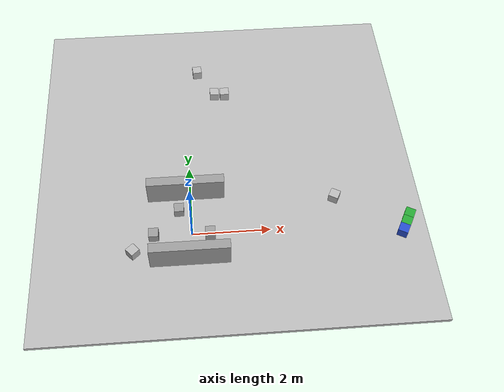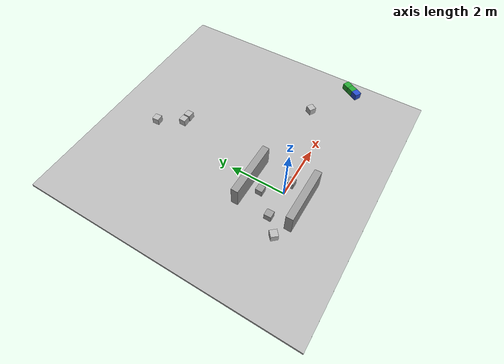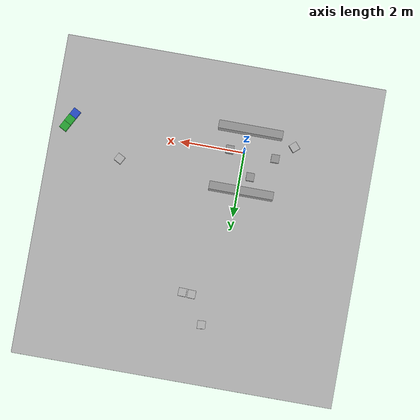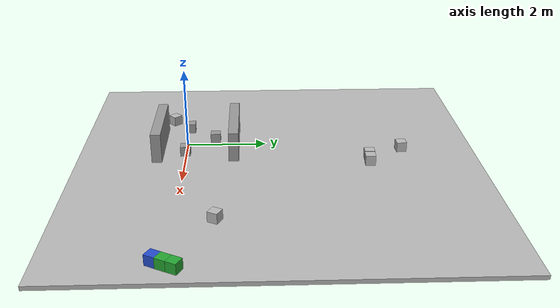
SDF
<sdf version="1.7">
 <world name="default">
  <scene>
   <ambient>0 0 0 1</ambient>
   <shadows>0</shadows>
   <grid>0</grid>
   <background>0.7 0.7 0.7 1</background>
  </scene>
  <light name="sun" type="directional">
   <pose>0 0 10 0 -0 0</pose>
   <diffuse>0.8 0.8 0.8 1</diffuse>
   <specular>0.2 0.2 0.2 1</specular>
   <attenuation>
    <range>1000</range>
    <constant>0.9</constant>
    <linear>0.01</linear>
    <quadratic>0.001</quadratic>
   </attenuation>
   <direction>-0.5 0.1 -0.9</direction>
   <spot><inner_angle>0</inner_angle><outer_angle>0</outer_angle><falloff>0</falloff></spot>
  </light>
  <model name="ground">
   <pose>1 2.3 -0.1 0 -0 0</pose>
   <static>1</static>
   <link name="ground">
    <collision name="ground_coll"><geometry><box><size>10 10 0.1</size></box></geometry></collision>
    <visual name="ground_vis">
     <geometry><box><size>10 10 0.1</size></box></geometry>
     <material><script><uri>file://course.material</uri><name>course</name></script></material>
    </visual>
   </link>
  </model>
  <gravity>0 0 -9.8</gravity>
  <magnetic_field>6e-06 2.3e-05 -4.2e-05</magnetic_field>
  <atmosphere type="adiabatic"/>
  <physics type="ode">
   <max_step_size>0.001</max_step_size>
   <real_time_factor>1</real_time_factor>
   <real_time_update_rate>1000</real_time_update_rate>
  </physics>
  <spherical_coordinates>
   <surface_model>EARTH_WGS84</surface_model>
   <latitude_deg>0</latitude_deg>
   <longitude_deg>0</longitude_deg>
   <elevation>0</elevation>
   <heading_deg>0</heading_deg>
  </spherical_coordinates>
  <model name="middle_shape_box">
   <pose>5.46718 -0.077383 0.075 -0 -0 -0.5</pose>
   <link name="link">
    <inertial>
     <mass>1</mass>
     <inertia><ixx>0.01</ixx><ixy>0</ixy><ixz>0</ixz><iyy>0.01</iyy><iyz>0</iyz><izz>0.01</izz></inertia>
    </inertial>
    <collision name="collision"><geometry><box><size>0.25 0.25 0.25</size></box></geometry></collision>
    <visual name="visual">
     <geometry><box><size>0.25 0.25 0.25</size></box></geometry>
     <material><script><uri>file://green_triangle.material</uri><name>green_triangle</name></script></material>
    </visual>
   </link>
  </model>
  <model name="left_shape_box">
   <pose>5.58532 0.143078 0.075 -0 -0 -0.5</pose>
   <link name="link">
    <inertial>
     <mass>1</mass>
     <inertia><ixx>0.01</ixx><ixy>0</ixy><ixz>0</ixz><iyy>0.01</iyy><iyz>0</iyz><izz>0.01</izz></inertia>
    </inertial>
    <collision name="collision"><geometry><box><size>0.25 0.25 0.25</size></box></geometry></collision>
    <visual name="visual">
     <geometry><box><size>0.25 0.25 0.25</size></box></geometry>
     <material><script><uri>file://green_square.material</uri><name>green_square</name></script></material>
    </visual>
   </link>
  </model>
  <model name="right_shape_box">
   <pose>5.34495 -0.295519 0.075 -0 -0 -0.5</pose>
   <link name="link">
    <inertial>
     <mass>1</mass>
     <inertia><ixx>0.01</ixx><ixy>0</ixy><ixz>0</ixz><iyy>0.01</iyy><iyz>0</iyz><izz>0.01</izz></inertia>
    </inertial>
    <collision name="collision"><geometry><box><size>0.25 0.25 0.25</size></box></geometry></collision>
    <visual name="visual">
     <geometry><box><size>0.25 0.25 0.25</size></box></geometry>
     <material><script><uri>file://blue_square.material</uri><name>blue_square</name></script></material>
    </visual>
   </link>
  </model>
  <model name="stop_2">
   <pose>3.75015 0.847574 0.075 -0 -0 -0.5</pose>
   <link name="link">
    <inertial>
     <mass>1</mass>
     <inertia><ixx>0.01</ixx><ixy>0</ixy><ixz>0</ixz><iyy>0.01</iyy><iyz>0</iyz><izz>0.01</izz></inertia>
    </inertial>
    <collision name="collision"><geometry><box><size>0.25 0.25 0.25</size></box></geometry></collision>
    <visual name="visual">
     <geometry><box><size>0.25 0.25 0.25</size></box></geometry>
     <material><script><uri>file://stop.material</uri><name>stop</name></script></material>
    </visual>
   </link>
  </model>
  <model name="stop_1">
   <pose>-1.49927 -0.436444 0.075 -0 -0 -0.85</pose>
   <link name="link">
    <inertial>
     <mass>1</mass>
     <inertia><ixx>0.01</ixx><ixy>0</ixy><ixz>0</ixz><iyy>0.01</iyy><iyz>0</iyz><izz>0.01</izz></inertia>
    </inertial>
    <collision name="collision"><geometry><box><size>0.25 0.25 0.25</size></box></geometry></collision>
    <visual name="visual">
     <geometry><box><size>0.25 0.25 0.25</size></box></geometry>
     <material><script><uri>file://stop.material</uri><name>stop</name></script></material>
    </visual>
   </link>
  </model>
  <model name="stop_3">
   <pose>0.378165 5.45257 0.075 0 0 -1.5</pose>
   <link name="link">
    <inertial>
     <mass>1</mass>
     <inertia><ixx>0.01</ixx><ixy>0</ixy><ixz>0</ixz><iyy>0.01</iyy><iyz>0</iyz><izz>0.01</izz></inertia>
    </inertial>
    <collision name="collision"><geometry><box><size>0.25 0.25 0.25</size></box></geometry></collision>
    <visual name="visual">
     <geometry><box><size>0.25 0.25 0.25</size></box></geometry>
     <material><script><uri>file://stop.material</uri><name>stop</name></script></material>
    </visual>
   </link>
  </model>
  <model name="number_2">
   <pose>0.838247 4.58049 0.075 0 0 -1.6</pose>
   <link name="link">
    <inertial>
     <mass>1</mass>
     <inertia><ixx>0.01</ixx><ixy>0</ixy><ixz>0</ixz><iyy>0.01</iyy><iyz>0</iyz><izz>0.01</izz></inertia>
    </inertial>
    <collision name="collision"><geometry><box><size>0.25 0.25 0.25</size></box></geometry></collision>
    <visual name="visual">
     <geometry><box><size>0.25 0.25 0.25</size></box></geometry>
     <material><script><uri>file://4.material</uri><name>4</name></script></material>
    </visual>
   </link>
  </model>
  <model name="number_1">
   <pose>1.12549 4.56613 0.075 0 0 -1.6</pose>
   <link name="link">
    <inertial>
     <mass>1</mass>
     <inertia><ixx>0.01</ixx><ixy>0</ixy><ixz>0</ixz><iyy>0.01</iyy><iyz>0</iyz><izz>0.01</izz></inertia>
    </inertial>
    <collision name="collision"><geometry><box><size>0.25 0.25 0.25</size></box></geometry></collision>
    <visual name="visual">
     <geometry><box><size>0.25 0.25 0.25</size></box></geometry>
     <material><script><uri>file://2.material</uri><name>2</name></script></material>
    </visual>
   </link>
  </model>
  <model name="right_wall">
   <pose>-0.081317 -0.700092 0.324975 0 2.5e-05 -0.002961</pose>
   <link name="link">
    <inertial>
     <mass>1</mass>
     <inertia>
      <ixx>0.166667</ixx>
      <ixy>0</ixy>
      <ixz>0</ixz>
      <iyy>0.166667</iyy>
      <iyz>0</iyz>
      <izz>0.166667</izz>
     </inertia>
    </inertial>
    <collision name="collision"><geometry><box><size>2 0.25 0.75</size></box></geometry></collision>
    <visual name="visual">
     <geometry><box><size>2 0.25 0.75</size></box></geometry>
     <material>
      <script><name>Gazebo/Grey</name><uri>file://media/materials/scripts/gazebo.material</uri></script>
     </material>
    </visual>
   </link>
  </model>
  <model name="left_wall">
   <pose>-0.113683 1.1997 0.324975 -0 -2.5e-05 -0.002674</pose>
   <link name="link">
    <inertial>
     <mass>1</mass>
     <inertia>
      <ixx>0.166667</ixx>
      <ixy>0</ixy>
      <ixz>0</ixz>
      <iyy>0.166667</iyy>
      <iyz>0</iyz>
      <izz>0.166667</izz>
     </inertia>
    </inertial>
    <collision name="collision"><geometry><box><size>2 0.25 0.75</size></box></geometry></collision>
    <visual name="visual">
     <geometry><box><size>2 0.25 0.75</size></box></geometry>
     <material>
      <script><name>Gazebo/Grey</name><uri>file://media/materials/scripts/gazebo.material</uri></script>
     </material>
    </visual>
   </link>
  </model>
  <light name="user_directional_light_0" type="directional">
   <pose>1.80914 6.52404 1 0 -0 0</pose>
   <diffuse>0.5 0.5 0.5 1</diffuse>
   <specular>0.1 0.1 0.1 1</specular>
   <direction>0.1 0.1 -0.9</direction>
   <attenuation>
    <range>20</range>
    <constant>0.5</constant>
    <linear>0.01</linear>
    <quadratic>0.001</quadratic>
   </attenuation>
   <spot><inner_angle>0</inner_angle><outer_angle>0</outer_angle><falloff>0</falloff></spot>
  </light>
  <light name="user_directional_light_1" type="directional">
   <pose>2.33121 -1.00354 1 0 -0 0</pose>
   <diffuse>0.5 0.5 0.5 1</diffuse>
   <specular>0.1 0.1 0.1 1</specular>
   <direction>0.1 0.1 -0.9</direction>
   <attenuation>
    <range>20</range>
    <constant>0.5</constant>
    <linear>0.01</linear>
    <quadratic>0.001</quadratic>
   </attenuation>
   <spot><inner_angle>0</inner_angle><outer_angle>0</outer_angle><falloff>0</falloff></spot>
  </light>
  <light name="user_directional_light_2" type="directional">
   <pose>3.25026 1.04323 1 0 -0 0</pose>
   <diffuse>0.5 0.5 0.5 1</diffuse>
   <specular>0.1 0.1 0.1 1</specular>
   <direction>0.1 0.1 -0.9</direction>
   <attenuation>
    <range>20</range>
    <constant>0.5</constant>
    <linear>0.01</linear>
    <quadratic>0.001</quadratic>
   </attenuation>
   <spot><inner_angle>0</inner_angle><outer_angle>0</outer_angle><falloff>0</falloff></spot>
  </light>
  <light name="user_directional_light_3" type="directional">
   <pose>-1.74998 0.964076 1 0 -0 0</pose>
   <diffuse>0.5 0.5 0.5 1</diffuse>
   <specular>0.1 0.1 0.1 1</specular>
   <direction>0.1 0.1 -0.9</direction>
   <attenuation>
    <range>20</range>
    <constant>0.5</constant>
    <linear>0.01</linear>
    <quadratic>0.001</quadratic>
   </attenuation>
   <spot><inner_angle>0</inner_angle><outer_angle>0</outer_angle><falloff>0</falloff></spot>
  </light>
  <model name="obstacle_box_1_clone">
   <pose>-0.97554 0.016026 0.075 0 -0 0</pose>
   <link name="link">
    <inertial>
     <mass>1</mass>
     <inertia>
      <ixx>0.166667</ixx>
      <ixy>0</ixy>
      <ixz>0</ixz>
      <iyy>0.166667</iyy>
      <iyz>0</iyz>
      <izz>0.166667</izz>
     </inertia>
    </inertial>
    <collision name="collision"><geometry><box><size>0.25 0.25 0.25</size></box></geometry></collision>
    <visual name="visual">
     <geometry><box><size>0.25 0.25 0.25</size></box></geometry>
     <material>
      <script><name>Gazebo/Grey</name><uri>file://media/materials/scripts/gazebo.material</uri></script>
     </material>
    </visual>
   </link>
  </model>
  <model name="obstacle_box_3_clone">
   <pose>-0.314222 0.706469 0.075 0 -0 0</pose>
   <link name="link">
    <inertial>
     <mass>1</mass>
     <inertia>
      <ixx>0.166667</ixx>
      <ixy>0</ixy>
      <ixz>0</ixz>
      <iyy>0.166667</iyy>
      <iyz>0</iyz>
      <izz>0.166667</izz>
     </inertia>
    </inertial>
    <collision name="collision"><geometry><box><size>0.25 0.25 0.25</size></box></geometry></collision>
    <visual name="visual">
     <geometry><box><size>0.25 0.25 0.25</size></box></geometry>
     <material>
      <script><name>Gazebo/Grey</name><uri>file://media/materials/scripts/gazebo.material</uri></script>
     </material>
    </visual>
   </link>
  </model>
  <model name="obstacle_box_2_clone">
   <pose>0.452455 -0.025132 0.075 0 -0 0</pose>
   <link name="link">
    <inertial>
     <mass>1</mass>
     <inertia>
      <ixx>0.166667</ixx>
      <ixy>0</ixy>
      <ixz>0</ixz>
      <iyy>0.166667</iyy>
      <iyz>0</iyz>
      <izz>0.166667</izz>
     </inertia>
    </inertial>
    <collision name="collision"><geometry><box><size>0.25 0.25 0.25</size></box></geometry></collision>
    <visual name="visual">
     <geometry><box><size>0.25 0.25 0.25</size></box></geometry>
     <material>
      <script><name>Gazebo/Grey</name><uri>file://media/materials/scripts/gazebo.material</uri></script>
     </material>
    </visual>
   </link>
  </model>
 </world>
</sdf>
